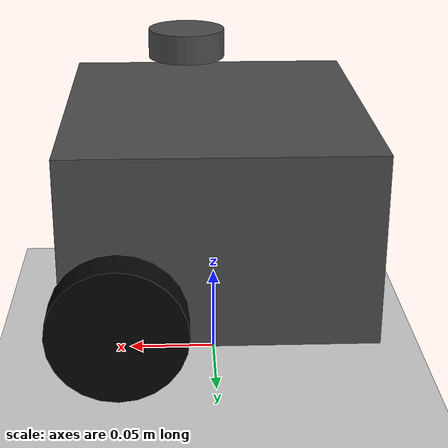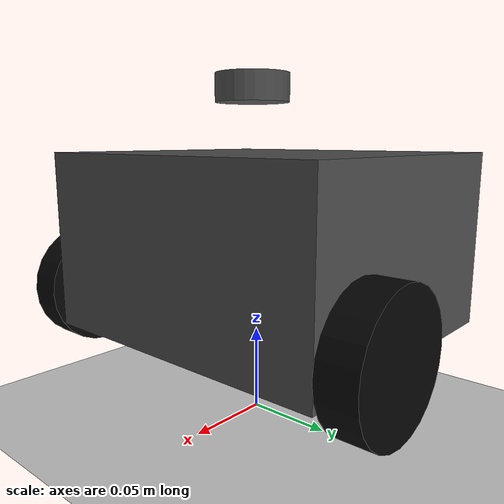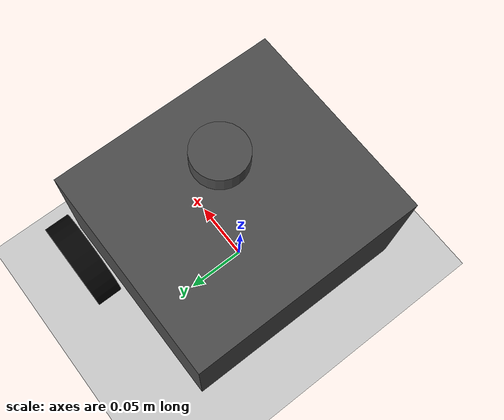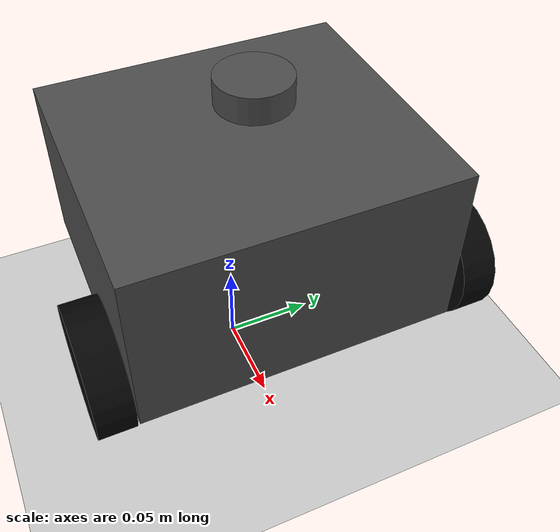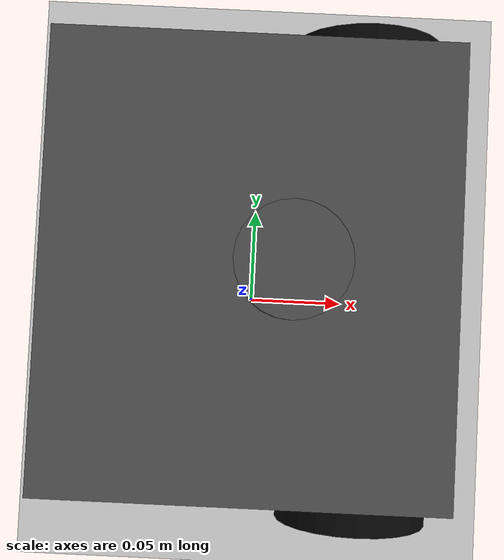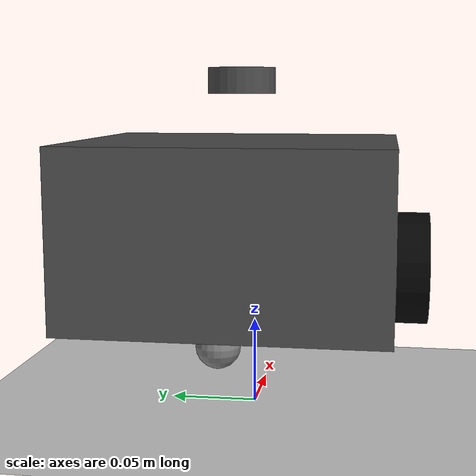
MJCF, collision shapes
<mujoco model="supermarketbot">
  <compiler angle="radian" meshdir="."/>
  <option timestep="0.002" integrator="implicitfast"/>

  <asset>
    <mesh name="chassis_l1" file="../meshes/chassis_l1.stl" scale="0.001 0.001 0.001"/>
    <mesh name="chassis_l2" file="../meshes/chassis_l2.stl" scale="0.001 0.001 0.001"/>
    <mesh name="chassis_l3" file="../meshes/chassis_l3.stl" scale="0.001 0.001 0.001"/>
    <mesh name="wheel" file="../meshes/wheel.stl" scale="0.001 0.001 0.001"/>
    <mesh name="lidar_base_link" file="../meshes/lidar_base_link.stl" scale="0.001 0.001 0.001"/>
    <material name="gray" rgba="0.3 0.3 0.3 1"/>
    <material name="black" rgba="0.02 0.02 0.02 1"/>
    <material name="green" rgba="0 0.5 0 1"/>
  </asset>

  <default>
    <joint damping="0.001"/>
    <geom friction="0.9 0.01 0.001"/>
  </default>

  <worldbody>
    <light pos="0 0 3" dir="0 0 -1" diffuse="1 1 1"/>
    <geom name="floor" type="plane" size="5 5 0.1" rgba="0.8 0.8 0.8 1"/>

    <body name="base_link" pos="0 0 0.04">
      <freejoint/>
      <inertial pos="0 0 0" mass="1.4" diaginertia="0.02 0.03 0.015"/>

      <geom type="mesh" mesh="chassis_l1" material="gray" contype="0" conaffinity="0" group="1"/>
      <geom type="mesh" mesh="chassis_l2" material="gray" contype="0" conaffinity="0" group="1"/>
      <geom type="mesh" mesh="chassis_l3" material="gray" contype="0" conaffinity="0" group="1"/>
      <geom type="box" size="0.080325 0.09 0.05" pos="0 0.009 0.066" material="gray"/>
      <!-- caster contact point (was a cylinder collision in the source URDF) -->
      <geom name="caster" type="sphere" size="0.012" pos="-0.064 0.0105 0.011" friction="0.05 0.005 0.0001"/>

      <geom type="mesh" mesh="lidar_base_link" material="black" pos="0 -9e-06 -0.000115" contype="0" conaffinity="0" group="1"/>
      <geom type="cylinder" size="0.02 0.0075" pos="0.015 0.01 0.15" material="gray" contype="0" conaffinity="0" group="1"/>
      <geom type="box" size="0.01 0.02 0.01" pos="0.06 0.005 0.09" material="green"/>

      <site name="lidar_site" pos="0.015 0.01 0.15" zaxis="1 0 0"/>
      <camera name="onboard_cam" pos="0.07 0.005 0.09" xyaxes="0 -1 0 0 0 1"/>

      <body name="left_wheel_link" pos="0.051 0.1125 0.034">
        <inertial pos="0 0 0" mass="0.2" diaginertia="0.0002 0.0001 0.0001"/>
        <joint name="left_wheel_joint" type="hinge" axis="0 1 0"/>
        <geom type="cylinder" size="0.035 0.01" euler="1.57 0 0" material="black"/>
      </body>

      <body name="right_wheel_link" pos="0.051 -0.0925 0.034">
        <inertial pos="0 0 0" mass="0.2" diaginertia="0.0002 0.0001 0.0001"/>
        <joint name="right_wheel_joint" type="hinge" axis="0 1 0"/>
        <geom type="cylinder" size="0.035 0.01" euler="1.57 0 0" material="black"/>
      </body>
    </body>
  </worldbody>

  <actuator>
    <velocity name="left_wheel_vel" joint="left_wheel_joint" kv="5" ctrlrange="-10 10" forcerange="-0.3 0.3"/>
    <velocity name="right_wheel_vel" joint="right_wheel_joint" kv="5" ctrlrange="-10 10" forcerange="-0.3 0.3"/>
  </actuator>

  <sensor>
    <rangefinder name="lidar_front" site="lidar_site"/>
  </sensor>
</mujoco>
